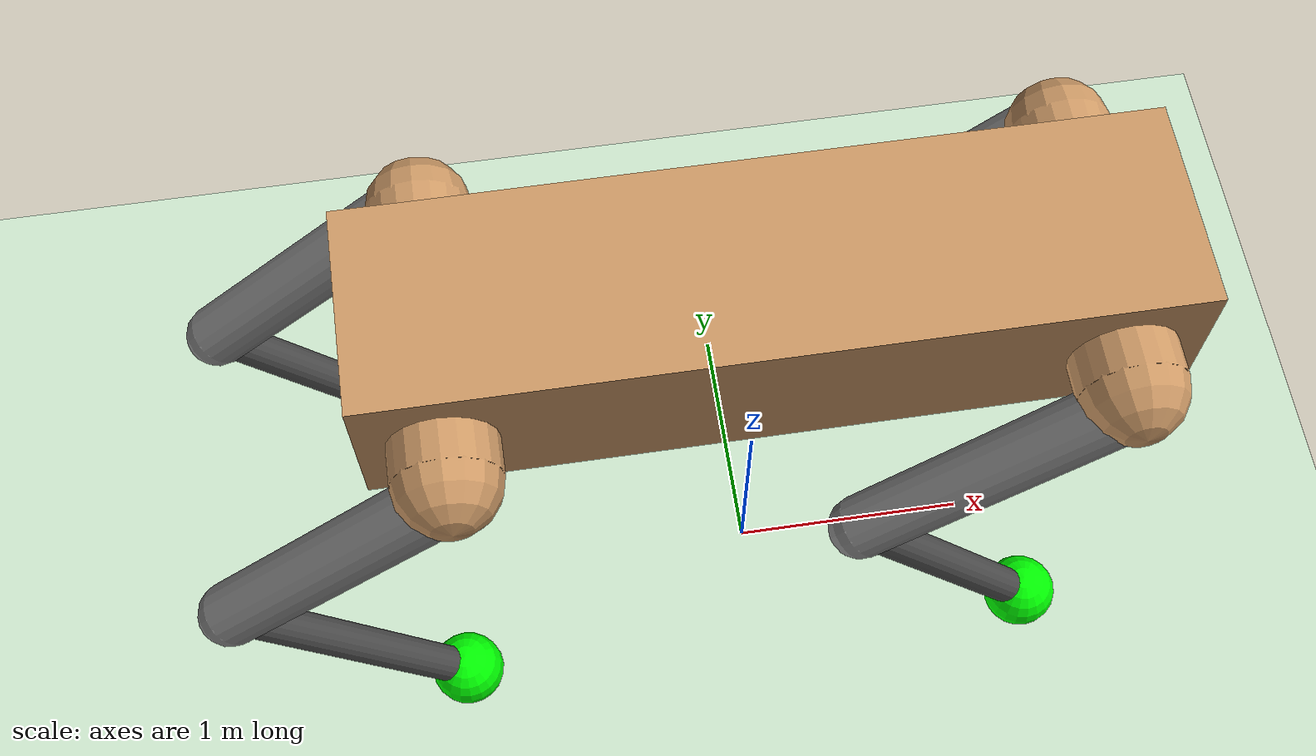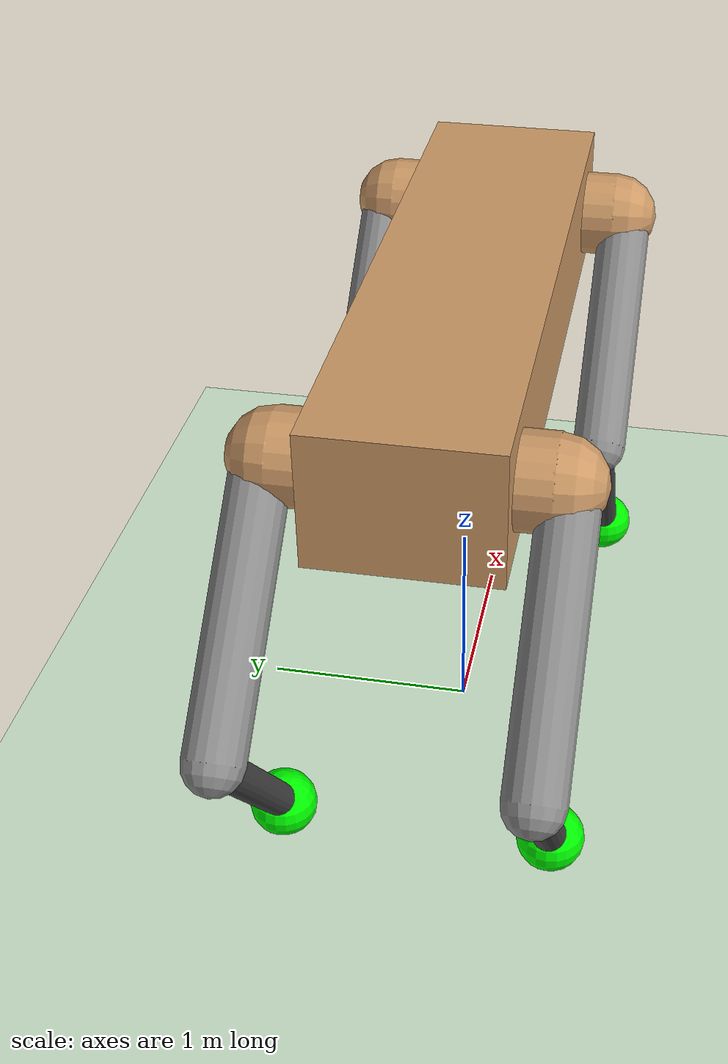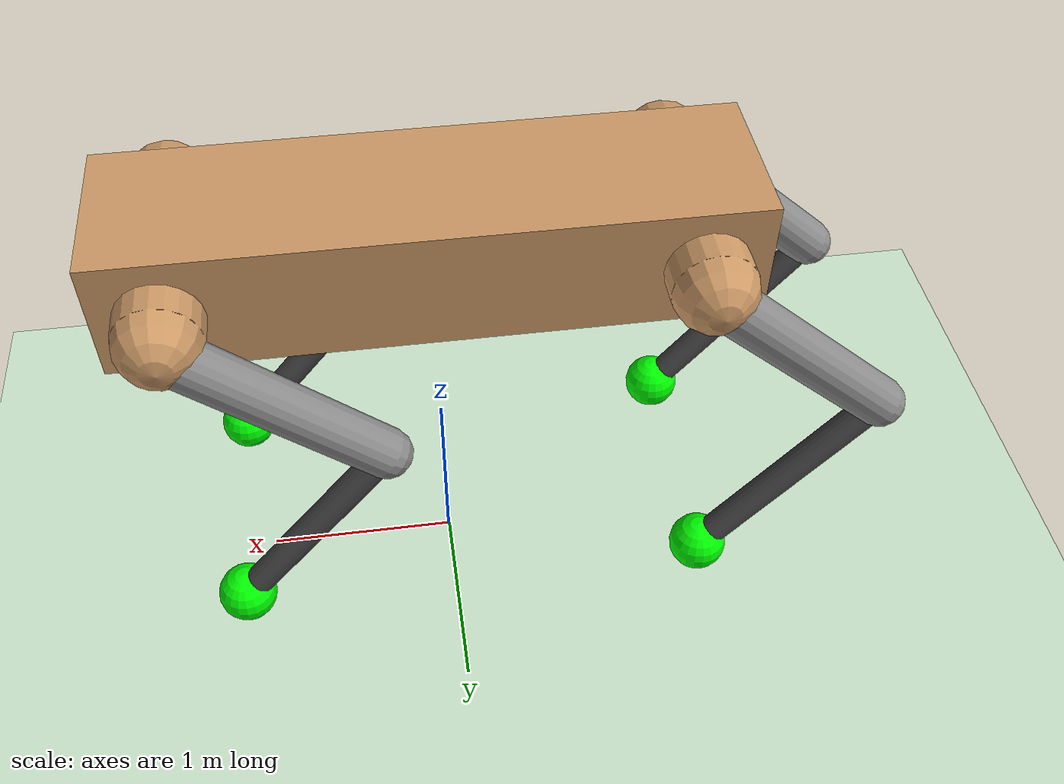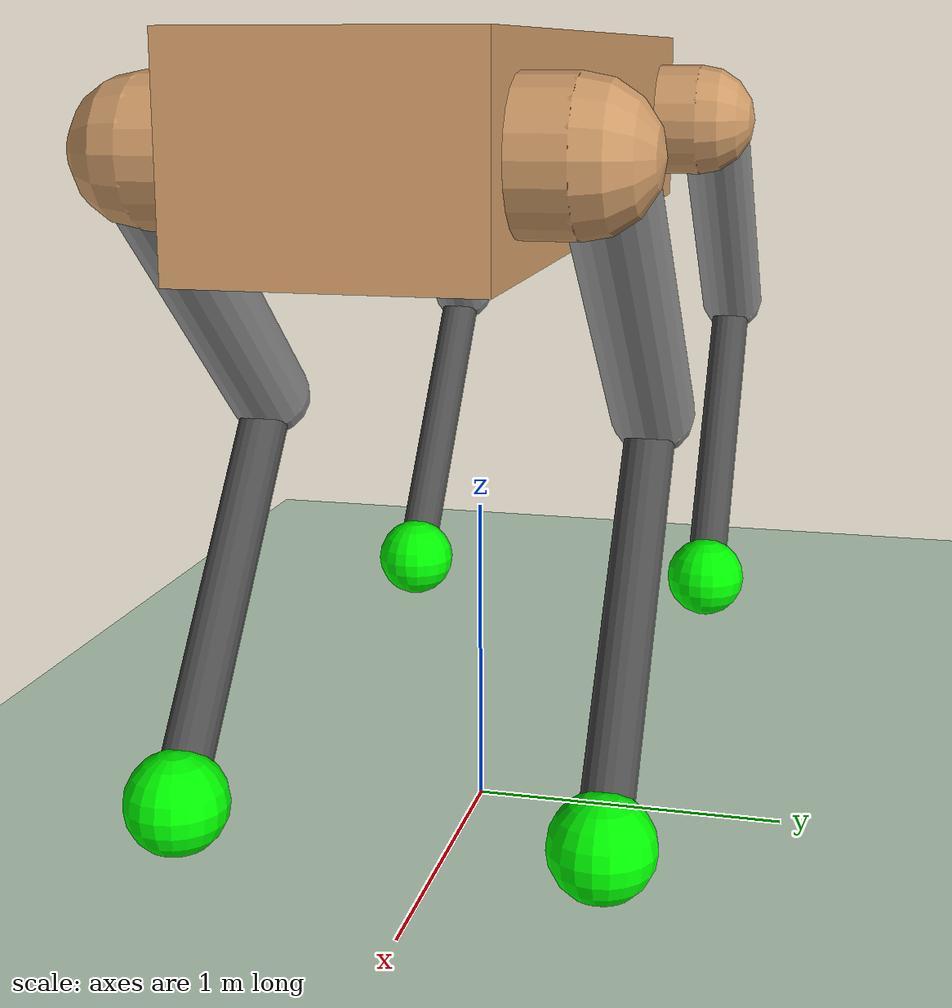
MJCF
<mujoco model="spotlike">
  <compiler angle="degree" coordinate="local" inertiafromgeom="true"/>
  <option integrator="RK4" timestep="0.01"/>
  <custom>
    <numeric data="0.0 0.0 0.55 1.0 0.0 0.0 0.0 0.0 1.0 0.0 -1.0 0.0 -1.0 0.0 1.0" name="init_qpos"/>
  </custom>

  <default>
    <joint armature="1" damping="10" frictionloss="0.25" limited="true"/>
    <geom conaffinity="0" condim="3" density="5.0" friction="1 0.5 0.5" margin="0.01" rgba="0.8 0.6 0.4 1"/>

    <default class="geom_def">
        <geom type="capsule"/>
        <default class="thigh">
            <geom size="0.125" rgba="0.55 0.55 0.55 1"/>

            <default class="FRONT_thigh">
                <geom fromto="0 0 0 -0.9 0 -0.8"/>
            </default>
            <default class="BACK_thigh">
                <geom fromto="0 0 0 -0.9 0 -0.8"/>
            </default>
        </default>
        <default class="calf">
            <geom size="0.075" rgba="0.3 0.3 0.3 1"/>

            <default class="FRONT_calf">
                <geom fromto="0 0 0 0.8 0 -1"/>
            </default>
            <default class="BACK_calf">
                <geom fromto="0 0 0 0.8 0 -1"/>
            </default>
        </default>
        <default class="foot">
            <geom pos="0.8 0 -1" size="0.15" type="sphere" rgba="0 1 0 1"/>
        </default>
    </default>

    <default class="knee">
        <joint axis="0 1 0" range="-65 50" type="hinge"/>
    </default>
    <default class="hip_Y">
        <joint axis="0 1 0" range="-25 40" type="hinge"/>
    </default>
    <default class="hip_X">
        <joint type="hinge" range="-45 45"/>
        <default class="L_hip_X">
            <joint axis="1 0 0"/>
        </default>
        <default class="R_hip_X">
            <joint axis="-1 0 0"/>
        </default>
    </default>

  </default>

  <asset>
    <texture builtin="gradient" height="100" rgb1="1 1 1" rgb2="0 0 0" type="skybox" width="100"/>
    <texture builtin="flat" height="1278" mark="cross" markrgb="1 1 1" name="texgeom" random="0.01" rgb1="0.8 0.6 0.4" rgb2="0.8 0.6 0.4" type="cube" width="127"/>
    <texture builtin="checker" height="100" name="texplane" rgb1="0 0 0" rgb2="0.8 0.8 0.8" type="2d" width="100"/>
    <material name="MatPlane" reflectance="0.5" shininess="1" specular="1" texrepeat="60 60" texture="texplane"/>
    <material name="geom" texture="texgeom" texuniform="true"/>
  </asset>

  <worldbody>
    <light cutoff="100" diffuse="1 1 1" dir="-0 0 -1.3" directional="true" exponent="1" pos="0 0 1.3" specular=".1 .1 .1"/>
    <geom conaffinity="1" condim="3" material="MatPlane" name="floor" pos="0 0 0" rgba="0.8 0.9 0.8 1" size="80 40 40" type="plane"/>

    <body name="torso" pos="0 0 2.2">
      <camera name="target" mode="trackcom" pos="0 -4 5" axisangle="1 0 0 35"/>
      <camera name="track" mode="trackcom" pos="0 -8 -0.5" xyaxes="1 0 0 0 0 1"/>

      <geom name="torso_geom" pos="0 0 0" size="1.5 0.4 0.3" type="box"/>
      <!-- connecting body to the world -->
      <joint armature="0" damping="0" limited="false" margin="0.01" name="root" pos="0 0 0" type="free"/>

      <body name="front" pos="1.2 0 0">
        <geom name="mockup_joints_front" fromto="0 -0.55 0 0 0.55 0" size="0.2" type="capsule"/>
        <body name="FL_thigh" pos="0 -0.6 0">
          <joint class="L_hip_X" name="FL_hip_X"/>
          <joint class="hip_Y" name="FL_hip_Y"/>
          <geom class="FRONT_thigh" name="FL_thigh_geom"/>

          <body name="FL_calf" pos="-0.9 0 -0.8">
            <joint class="knee" name="FL_knee"/>
            <geom class="FRONT_calf" name="FL_calf_geom"/>

            <geom class="foot"/>
          </body>
        </body>

        <body name="FR_thigh" pos="0 +0.6 0">
          <joint class="R_hip_X" name="FR_hip_X"/>
          <joint class="hip_Y" name="FR_hip_Y"/>
          <geom class="FRONT_thigh" name="FR_thigh_geom"/>

          <body name="FR_calf" pos="-0.9 0 -0.8">
            <joint class="knee" name="FR_knee"/>
            <geom class="FRONT_calf" name="FR_calf_geom"/>

            <geom class="foot"/>
          </body>
        </body>
      </body>

      <body name="back" pos="-1.2 0 0">
        <geom name="mockup_joints_back" fromto="0 -0.55 0 0 0.55 0" size="0.2" type="capsule"/>
        <body name="BL_thigh" pos="0 -0.6 0">
          <joint class="L_hip_X" name="BL_hip_X"/>
          <joint class="hip_Y" name="BL_hip_Y"/>
          <geom class="BACK_thigh" name="BL_thigh_geom"/>

          <body name="BL_calf" pos="-0.9 0 -0.8">
            <joint class="knee" name="BL_knee"/>
            <geom class="BACK_calf" name="BL_calf_geom"/>

            <geom class="foot"/>
          </body>
        </body>

        <body name="BR_thigh" pos="0 +0.6 0">
          <joint class="R_hip_X" name="BR_hip_X"/>
          <joint class="hip_Y" name="BR_hip_Y"/>
          <geom class="BACK_thigh" name="BR_thigh_geom"/>

          <body name="BR_calf" pos="-0.9 0 -0.8">
            <joint class="knee" name="BR_knee"/>
            <geom class="BACK_calf" name="BR_calf_geom"/>

            <geom class="foot"/>
          </body>
        </body>
      </body>

      <body name="bottom" pos="0 0 -2.2">
      </body>
    </body>

  </worldbody>
  <actuator>
    <position ctrllimited="true" ctrlrange="-1.0 1.0" joint="FL_hip_X" kp="100"/>
    <position ctrllimited="true" ctrlrange="-1.0 1.0" joint="FL_hip_Y" kp="100"/>
    <position ctrllimited="true" ctrlrange="-1.0 1.0" joint="FL_knee"  kp="100"/>
    <position ctrllimited="true" ctrlrange="-1.0 1.0" joint="FR_hip_X" kp="100"/>
    <position ctrllimited="true" ctrlrange="-1.0 1.0" joint="FR_hip_Y" kp="100"/>
    <position ctrllimited="true" ctrlrange="-1.0 1.0" joint="FR_knee"  kp="100"/>
    <position ctrllimited="true" ctrlrange="-1.0 1.0" joint="BL_hip_X" kp="100"/>
    <position ctrllimited="true" ctrlrange="-1.0 1.0" joint="BL_hip_Y" kp="100"/>
    <position ctrllimited="true" ctrlrange="-1.0 1.0" joint="BL_knee"  kp="100"/>
    <position ctrllimited="true" ctrlrange="-1.0 1.0" joint="BR_hip_X" kp="100"/>
    <position ctrllimited="true" ctrlrange="-1.0 1.0" joint="BR_hip_Y" kp="100"/>
    <position ctrllimited="true" ctrlrange="-1.0 1.0" joint="BR_knee"  kp="100"/>
  </actuator>
</mujoco>
